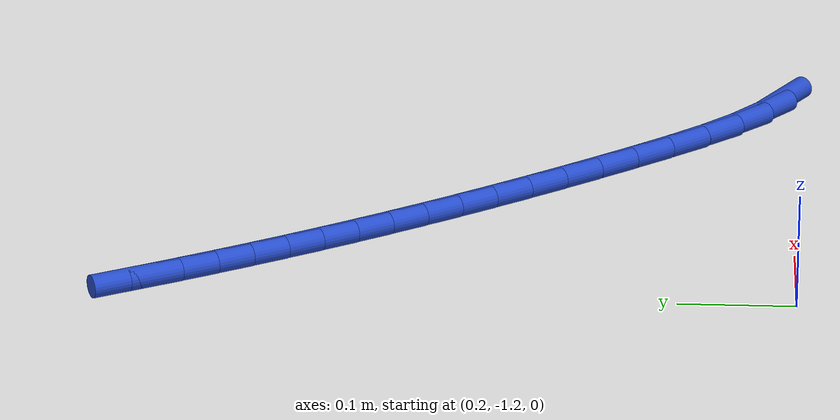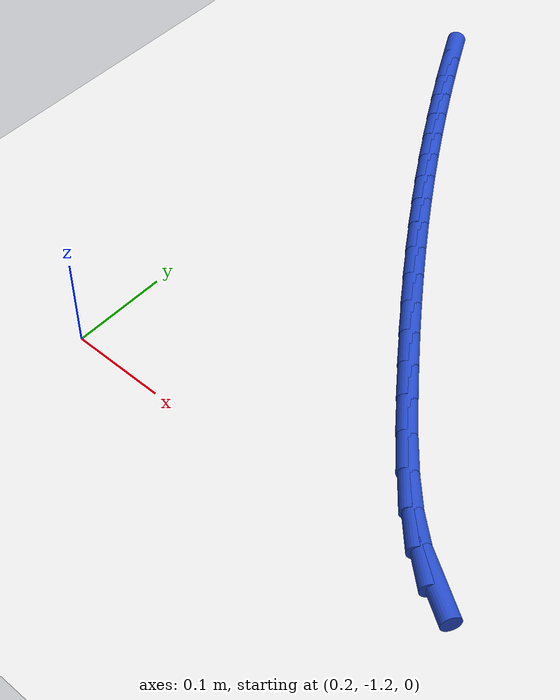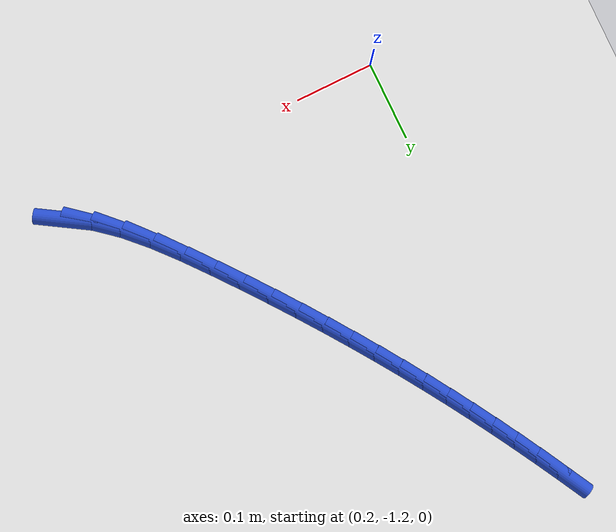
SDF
<sdf version="1.6">
 <world name="default">
  <model name="ground_plane">
   <static>1</static>
   <link name="link">
    <collision name="collision">
     <geometry><plane><normal>0 0 1</normal><size>100 100</size></plane></geometry>
     <surface><friction><ode><mu>100</mu><mu2>50</mu2></ode></friction></surface>
    </collision>
    <visual name="visual">
     <cast_shadows>0</cast_shadows>
     <geometry><plane><normal>0 0 1</normal><size>100 100</size></plane></geometry>
     <material>
      <script><uri>file://media/materials/scripts/gazebo.material</uri><name>Gazebo/WhiteGlow</name></script>
     </material>
    </visual>
   </link>
  </model>
  <model name="line">
   <link name="link_201">
    <pose>0.6195668897979961 -1.1917811044570854 0.01 0 1.57 -0.558844966557234</pose>
    <collision name="collision">
     <geometry><cylinder><radius>0.01</radius><length>0.08</length></cylinder></geometry>
    </collision>
    <visual name="visual">
     <material>
      <script><name>Gazebo/Blue</name><uri>file://media/materials/scripts/gazebo.material</uri></script>
     </material>
     <geometry><cylinder><radius>0.01</radius><length>0.08</length></cylinder></geometry>
    </visual>
   </link>
   <link name="link_202">
    <pose>0.5910270065946949 -1.173933926484798 0.01 0 1.57 -0.7027300140812442</pose>
    <collision name="collision">
     <geometry><cylinder><radius>0.01</radius><length>0.08</length></cylinder></geometry>
    </collision>
    <visual name="visual">
     <material>
      <script><name>Gazebo/Blue</name><uri>file://media/materials/scripts/gazebo.material</uri></script>
     </material>
     <geometry><cylinder><radius>0.01</radius><length>0.08</length></cylinder></geometry>
    </visual>
   </link>
   <link name="link_203">
    <pose>0.562871209113819 -1.150086924165781 0.01 0 1.57 -0.7968055390816773</pose>
    <collision name="collision">
     <geometry><cylinder><radius>0.01</radius><length>0.08</length></cylinder></geometry>
    </collision>
    <visual name="visual">
     <material>
      <script><name>Gazebo/Blue</name><uri>file://media/materials/scripts/gazebo.material</uri></script>
     </material>
     <geometry><cylinder><radius>0.01</radius><length>0.08</length></cylinder></geometry>
    </visual>
   </link>
   <link name="link_204">
    <pose>0.535277823279165 -1.121856709929719 0.01 0 1.57 -0.8569130567253994</pose>
    <collision name="collision">
     <geometry><cylinder><radius>0.01</radius><length>0.08</length></cylinder></geometry>
    </collision>
    <visual name="visual">
     <material>
      <script><name>Gazebo/Blue</name><uri>file://media/materials/scripts/gazebo.material</uri></script>
     </material>
     <geometry><cylinder><radius>0.01</radius><length>0.08</length></cylinder></geometry>
    </visual>
   </link>
   <link name="link_205">
    <pose>0.5084251750145282 -1.0908598962062968 0.01 0 1.57 -0.8919690175526159</pose>
    <collision name="collision">
     <geometry><cylinder><radius>0.01</radius><length>0.08</length></cylinder></geometry>
    </collision>
    <visual name="visual">
     <material>
      <script><name>Gazebo/Blue</name><uri>file://media/materials/scripts/gazebo.material</uri></script>
     </material>
     <geometry><cylinder><radius>0.01</radius><length>0.08</length></cylinder></geometry>
    </visual>
   </link>
   <link name="link_206">
    <pose>0.4824915902437051 -1.0587130954251998 0.01 0 1.57 -0.908304324332144</pose>
    <collision name="collision">
     <geometry><cylinder><radius>0.01</radius><length>0.08</length></cylinder></geometry>
    </collision>
    <visual name="visual">
     <material>
      <script><name>Gazebo/Blue</name><uri>file://media/materials/scripts/gazebo.material</uri></script>
     </material>
     <geometry><cylinder><radius>0.01</radius><length>0.08</length></cylinder></geometry>
    </visual>
   </link>
   <link name="link_207">
    <pose>0.4576280317263191 -1.026841057060919 0.01 0 1.57 -0.9202165904741071</pose>
    <collision name="collision">
     <geometry><cylinder><radius>0.01</radius><length>0.08</length></cylinder></geometry>
    </collision>
    <visual name="visual">
     <material>
      <script><name>Gazebo/Blue</name><uri>file://media/materials/scripts/gazebo.material</uri></script>
     </material>
     <geometry><cylinder><radius>0.01</radius><length>0.08</length></cylinder></geometry>
    </visual>
   </link>
   <link name="link_208">
    <pose>0.43382920065234637 -0.9955728675883427 0.01 0 1.57 -0.9324791252115548</pose>
    <collision name="collision">
     <geometry><cylinder><radius>0.01</radius><length>0.08</length></cylinder></geometry>
    </collision>
    <visual name="visual">
     <material>
      <script><name>Gazebo/Blue</name><uri>file://media/materials/scripts/gazebo.material</uri></script>
     </material>
     <geometry><cylinder><radius>0.01</radius><length>0.08</length></cylinder></geometry>
    </visual>
   </link>
   <link name="link_209">
    <pose>0.41103441708473465 -0.9648492963043092 0.01 0 1.57 -0.9450404623878021</pose>
    <collision name="collision">
     <geometry><cylinder><radius>0.01</radius><length>0.08</length></cylinder></geometry>
    </collision>
    <visual name="visual">
     <material>
      <script><name>Gazebo/Blue</name><uri>file://media/materials/scripts/gazebo.material</uri></script>
     </material>
     <geometry><cylinder><radius>0.01</radius><length>0.08</length></cylinder></geometry>
    </visual>
   </link>
   <link name="link_210">
    <pose>0.38918293605259313 -0.9346106565063401 0.01 0 1.57 -0.9578329355957357</pose>
    <collision name="collision">
     <geometry><cylinder><radius>0.01</radius><length>0.08</length></cylinder></geometry>
    </collision>
    <visual name="visual">
     <material>
      <script><name>Gazebo/Blue</name><uri>file://media/materials/scripts/gazebo.material</uri></script>
     </material>
     <geometry><cylinder><radius>0.01</radius><length>0.08</length></cylinder></geometry>
    </visual>
   </link>
   <link name="link_211">
    <pose>0.3682140125850318 -0.9047972614919578 0.01 0 1.57 -0.9707787075413365</pose>
    <collision name="collision">
     <geometry><cylinder><radius>0.01</radius><length>0.08</length></cylinder></geometry>
    </collision>
    <visual name="visual">
     <material>
      <script><name>Gazebo/Blue</name><uri>file://media/materials/scripts/gazebo.material</uri></script>
     </material>
     <geometry><cylinder><radius>0.01</radius><length>0.08</length></cylinder></geometry>
    </visual>
   </link>
   <link name="link_212">
    <pose>0.3480669017111602 -0.8753494245586844 0.01 0 1.57 -0.9837905800214329</pose>
    <collision name="collision">
     <geometry><cylinder><radius>0.01</radius><length>0.08</length></cylinder></geometry>
    </collision>
    <visual name="visual">
     <material>
      <script><name>Gazebo/Blue</name><uri>file://media/materials/scripts/gazebo.material</uri></script>
     </material>
     <geometry><cylinder><radius>0.01</radius><length>0.08</length></cylinder></geometry>
    </visual>
   </link>
   <link name="link_213">
    <pose>0.32868085846008843 -0.8462074590040427 0.01 0 1.57 -0.9967732813322805</pose>
    <collision name="collision">
     <geometry><cylinder><radius>0.01</radius><length>0.08</length></cylinder></geometry>
    </collision>
    <visual name="visual">
     <material>
      <script><name>Gazebo/Blue</name><uri>file://media/materials/scripts/gazebo.material</uri></script>
     </material>
     <geometry><cylinder><radius>0.01</radius><length>0.08</length></cylinder></geometry>
    </visual>
   </link>
   <link name="link_214">
    <pose>0.3099951378609261 -0.8173116781255547 0.01 0 1.57 -1.0096252258767437</pose>
    <collision name="collision">
     <geometry><cylinder><radius>0.01</radius><length>0.08</length></cylinder></geometry>
    </collision>
    <visual name="visual">
     <material>
      <script><name>Gazebo/Blue</name><uri>file://media/materials/scripts/gazebo.material</uri></script>
     </material>
     <geometry><cylinder><radius>0.01</radius><length>0.08</length></cylinder></geometry>
    </visual>
   </link>
   <link name="link_215">
    <pose>0.29194899494278254 -0.7886023952207424 0.01 0 1.57 -1.0222407035410903</pose>
    <collision name="collision">
     <geometry><cylinder><radius>0.01</radius><length>0.08</length></cylinder></geometry>
    </collision>
    <visual name="visual">
     <material>
      <script><name>Gazebo/Blue</name><uri>file://media/materials/scripts/gazebo.material</uri></script>
     </material>
     <geometry><cylinder><radius>0.01</radius><length>0.08</length></cylinder></geometry>
    </visual>
   </link>
   <link name="link_216">
    <pose>0.2744816847347685 -0.760019923587129 0.01 0 1.57 -1.0345124178927079</pose>
    <collision name="collision">
     <geometry><cylinder><radius>0.01</radius><length>0.08</length></cylinder></geometry>
    </collision>
    <visual name="visual">
     <material>
      <script><name>Gazebo/Blue</name><uri>file://media/materials/scripts/gazebo.material</uri></script>
     </material>
     <geometry><cylinder><radius>0.01</radius><length>0.08</length></cylinder></geometry>
    </visual>
   </link>
   <link name="link_217">
    <pose>0.2575324622659935 -0.731504576522237 0.01 0 1.57 -1.0463342571205185</pose>
    <collision name="collision">
     <geometry><cylinder><radius>0.01</radius><length>0.08</length></cylinder></geometry>
    </collision>
    <visual name="visual">
     <material>
      <script><name>Gazebo/Blue</name><uri>file://media/materials/scripts/gazebo.material</uri></script>
     </material>
     <geometry><cylinder><radius>0.01</radius><length>0.08</length></cylinder></geometry>
    </visual>
   </link>
   <link name="link_218">
    <pose>0.2410405825655672 -0.7029966673235881 0.01 0 1.57 -1.0576041547480055</pose>
    <collision name="collision">
     <geometry><cylinder><radius>0.01</radius><length>0.08</length></cylinder></geometry>
    </collision>
    <visual name="visual">
     <material>
      <script><name>Gazebo/Blue</name><uri>file://media/materials/scripts/gazebo.material</uri></script>
     </material>
     <geometry><cylinder><radius>0.01</radius><length>0.08</length></cylinder></geometry>
    </visual>
   </link>
   <link name="link_219">
    <pose>0.22494530066259943 -0.674436509288705 0.01 0 1.57 -1.0682268825828893</pose>
    <collision name="collision">
     <geometry><cylinder><radius>0.01</radius><length>0.08</length></cylinder></geometry>
    </collision>
    <visual name="visual">
     <material>
      <script><name>Gazebo/Blue</name><uri>file://media/materials/scripts/gazebo.material</uri></script>
     </material>
     <geometry><cylinder><radius>0.01</radius><length>0.08</length></cylinder></geometry>
    </visual>
   </link>
   <link name="link_220">
    <pose>0.20918587158620006 -0.6457644157151102 0.01 0 1.57 -1.0781166186141604</pose>
    <collision name="collision">
     <geometry><cylinder><radius>0.01</radius><length>0.08</length></cylinder></geometry>
    </collision>
    <visual name="visual">
     <material>
      <script><name>Gazebo/Blue</name><uri>file://media/materials/scripts/gazebo.material</uri></script>
     </material>
     <geometry><cylinder><radius>0.01</radius><length>0.08</length></cylinder></geometry>
    </visual>
   </link>
  </model>
 </world>
</sdf>
